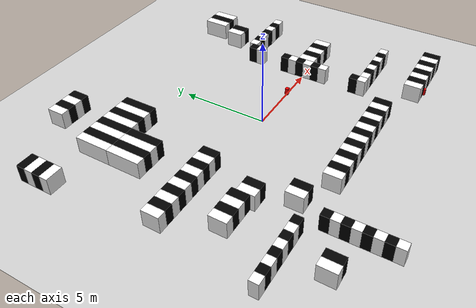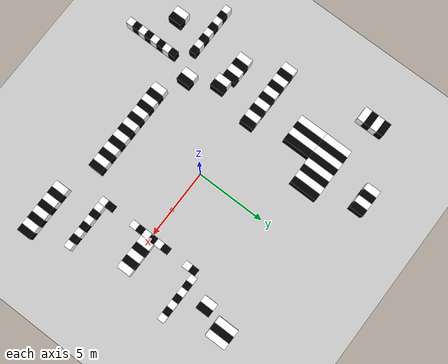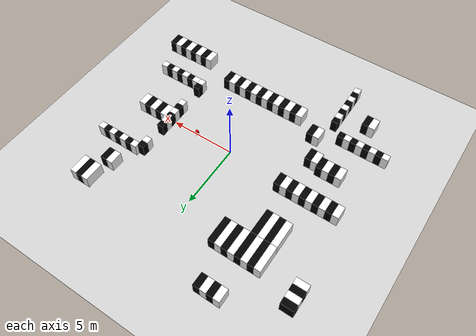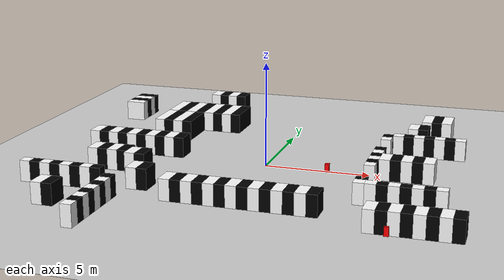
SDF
<sdf version="1.9">
 <world name="default">
  <model name="ground_plane">
   <static>true</static>
   <link name="link">
    <collision name="collision">
     <geometry><plane><normal>0 0 1</normal><size>100 100</size></plane></geometry>
    </collision>
    <visual name="visual">
     <geometry><plane><normal>0 0 1</normal><size>100 100</size></plane></geometry>
     <material>
      <ambient>0.8 0.8 0.8 1</ambient>
      <diffuse>0.8 0.8 0.8 1</diffuse>
      <specular>0.8 0.8 0.8 1</specular>
     </material>
    </visual>
   </link>
  </model>
  <model name="obs1">
   <static>true</static>
   <link name="link">
    <collision name="collision1">
     <geometry>
      <polyline>
       <point>-10 -5</point>
       <point>-6 -5</point>
       <point>-6 -5.5</point>
       <point>-10 -5.5</point>
       <height>1</height>
      </polyline>
     </geometry>
    </collision>
    <visual name="s1">
     <pose>-9.75 -5.25 0.5 0 0 0</pose>
     <geometry><box><size>0.5 0.5 1</size></box></geometry>
     <material><ambient>1 1 1 1</ambient><diffuse>1 1 1 1</diffuse></material>
    </visual>
    <visual name="s2">
     <pose>-9.25 -5.25 0.5 0 0 0</pose>
     <geometry><box><size>0.5 0.5 1</size></box></geometry>
     <material><ambient>0 0 0 1</ambient><diffuse>0 0 0 1</diffuse></material>
    </visual>
    <visual name="s3">
     <pose>-8.75 -5.25 0.5 0 0 0</pose>
     <geometry><box><size>0.5 0.5 1</size></box></geometry>
     <material><ambient>1 1 1 1</ambient><diffuse>1 1 1 1</diffuse></material>
    </visual>
    <visual name="s4">
     <pose>-8.25 -5.25 0.5 0 0 0</pose>
     <geometry><box><size>0.5 0.5 1</size></box></geometry>
     <material><ambient>0 0 0 1</ambient><diffuse>0 0 0 1</diffuse></material>
    </visual>
    <visual name="s5">
     <pose>-7.75 -5.25 0.5 0 0 0</pose>
     <geometry><box><size>0.5 0.5 1</size></box></geometry>
     <material><ambient>1 1 1 1</ambient><diffuse>1 1 1 1</diffuse></material>
    </visual>
    <visual name="s6">
     <pose>-7.25 -5.25 0.5 0 0 0</pose>
     <geometry><box><size>0.5 0.5 1</size></box></geometry>
     <material><ambient>0 0 0 1</ambient><diffuse>0 0 0 1</diffuse></material>
    </visual>
    <visual name="s7">
     <pose>-6.75 -5.25 0.5 0 0 0</pose>
     <geometry><box><size>0.5 0.5 1</size></box></geometry>
     <material><ambient>1 1 1 1</ambient><diffuse>1 1 1 1</diffuse></material>
    </visual>
    <visual name="s8">
     <pose>-6.25 -5.25 0.5 0 0 0</pose>
     <geometry><box><size>0.5 0.5 1</size></box></geometry>
     <material><ambient>0 0 0 1</ambient><diffuse>0 0 0 1</diffuse></material>
    </visual>
   </link>
  </model>
  <model name="obs2">
   <static>true</static>
   <link name="link">
    <collision name="collision1">
     <geometry>
      <polyline>
       <point>-5.5 -6</point>
       <point>-5 -6</point>
       <point>-5 -10</point>
       <point>-5.5 -10</point>
       <height>1</height>
      </polyline>
     </geometry>
    </collision>
    <visual name="s1">
     <pose>-5.25 -9.75 0.5 0 0 0</pose>
     <geometry><box><size>0.5 0.5 1</size></box></geometry>
     <material><ambient>1 1 1 1</ambient><diffuse>1 1 1 1</diffuse></material>
    </visual>
    <visual name="s2">
     <pose>-5.25 -9.25 0.5 0 0 0</pose>
     <geometry><box><size>0.5 0.5 1</size></box></geometry>
     <material><ambient>0 0 0 1</ambient><diffuse>0 0 0 1</diffuse></material>
    </visual>
    <visual name="s3">
     <pose>-5.25 -8.75 0.5 0 0 0</pose>
     <geometry><box><size>0.5 0.5 1</size></box></geometry>
     <material><ambient>1 1 1 1</ambient><diffuse>1 1 1 1</diffuse></material>
    </visual>
    <visual name="s4">
     <pose>-5.25 -8.25 0.5 0 0 0</pose>
     <geometry><box><size>0.5 0.5 1</size></box></geometry>
     <material><ambient>0 0 0 1</ambient><diffuse>0 0 0 1</diffuse></material>
    </visual>
    <visual name="s5">
     <pose>-5.25 -7.75 0.5 0 0 0</pose>
     <geometry><box><size>0.5 0.5 1</size></box></geometry>
     <material><ambient>1 1 1 1</ambient><diffuse>1 1 1 1</diffuse></material>
    </visual>
    <visual name="s6">
     <pose>-5.25 -7.25 0.5 0 0 0</pose>
     <geometry><box><size>0.5 0.5 1</size></box></geometry>
     <material><ambient>0 0 0 1</ambient><diffuse>0 0 0 1</diffuse></material>
    </visual>
    <visual name="s7">
     <pose>-5.25 -6.75 0.5 0 0 0</pose>
     <geometry><box><size>0.5 0.5 1</size></box></geometry>
     <material><ambient>1 1 1 1</ambient><diffuse>1 1 1 1</diffuse></material>
    </visual>
    <visual name="s8">
     <pose>-5.25 -6.25 0.5 0 0 0</pose>
     <geometry><box><size>0.5 0.5 1</size></box></geometry>
     <material><ambient>0 0 0 1</ambient><diffuse>0 0 0 1</diffuse></material>
    </visual>
   </link>
  </model>
  <model name="obs3">
   <static>true</static>
   <link name="link">
    <collision name="collision1">
     <geometry>
      <polyline>
       <point>-3 -5</point>
       <point>4 -5</point>
       <point>4 -6</point>
       <point>-3 -6</point>
       <height>1</height>
      </polyline>
     </geometry>
    </collision>
    <visual name="s1">
     <pose>-2.75 -5.5 0.5 0 0 0</pose>
     <geometry><box><size>0.5 1 1</size></box></geometry>
     <material><ambient>1 1 1 1</ambient><diffuse>1 1 1 1</diffuse></material>
    </visual>
    <visual name="s2">
     <pose>-2.25 -5.5 0.5 0 0 0</pose>
     <geometry><box><size>0.5 1 1</size></box></geometry>
     <material><ambient>0 0 0 1</ambient><diffuse>0 0 0 1</diffuse></material>
    </visual>
    <visual name="s3">
     <pose>-1.75 -5.5 0.5 0 0 0</pose>
     <geometry><box><size>0.5 1 1</size></box></geometry>
     <material><ambient>1 1 1 1</ambient><diffuse>1 1 1 1</diffuse></material>
    </visual>
    <visual name="s4">
     <pose>-1.25 -5.5 0.5 0 0 0</pose>
     <geometry><box><size>0.5 1 1</size></box></geometry>
     <material><ambient>0 0 0 1</ambient><diffuse>0 0 0 1</diffuse></material>
    </visual>
    <visual name="s5">
     <pose>-0.75 -5.5 0.5 0 0 0</pose>
     <geometry><box><size>0.5 1 1</size></box></geometry>
     <material><ambient>1 1 1 1</ambient><diffuse>1 1 1 1</diffuse></material>
    </visual>
    <visual name="s6">
     <pose>-0.25 -5.5 0.5 0 0 0</pose>
     <geometry><box><size>0.5 1 1</size></box></geometry>
     <material><ambient>0 0 0 1</ambient><diffuse>0 0 0 1</diffuse></material>
    </visual>
    <visual name="s7">
     <pose>0.25 -5.5 0.5 0 0 0</pose>
     <geometry><box><size>0.5 1 1</size></box></geometry>
     <material><ambient>1 1 1 1</ambient><diffuse>1 1 1 1</diffuse></material>
    </visual>
    <visual name="s8">
     <pose>0.75 -5.5 0.5 0 0 0</pose>
     <geometry><box><size>0.5 1 1</size></box></geometry>
     <material><ambient>0 0 0 1</ambient><diffuse>0 0 0 1</diffuse></material>
    </visual>
    <visual name="s9">
     <pose>1.25 -5.5 0.5 0 0 0</pose>
     <geometry><box><size>0.5 1 1</size></box></geometry>
     <material><ambient>1 1 1 1</ambient><diffuse>1 1 1 1</diffuse></material>
    </visual>
    <visual name="s10">
     <pose>1.75 -5.5 0.5 0 0 0</pose>
     <geometry><box><size>0.5 1 1</size></box></geometry>
     <material><ambient>0 0 0 1</ambient><diffuse>0 0 0 1</diffuse></material>
    </visual>
    <visual name="s11">
     <pose>2.25 -5.5 0.5 0 0 0</pose>
     <geometry><box><size>0.5 1 1</size></box></geometry>
     <material><ambient>1 1 1 1</ambient><diffuse>1 1 1 1</diffuse></material>
    </visual>
    <visual name="s12">
     <pose>2.75 -5.5 0.5 0 0 0</pose>
     <geometry><box><size>0.5 1 1</size></box></geometry>
     <material><ambient>0 0 0 1</ambient><diffuse>0 0 0 1</diffuse></material>
    </visual>
    <visual name="s13">
     <pose>3.25 -5.5 0.5 0 0 0</pose>
     <geometry><box><size>0.5 1 1</size></box></geometry>
     <material><ambient>1 1 1 1</ambient><diffuse>1 1 1 1</diffuse></material>
    </visual>
    <visual name="s14">
     <pose>3.75 -5.5 0.5 0 0 0</pose>
     <geometry><box><size>0.5 1 1</size></box></geometry>
     <material><ambient>0 0 0 1</ambient><diffuse>0 0 0 1</diffuse></material>
    </visual>
   </link>
  </model>
  <model name="obs4">
   <static>true</static>
   <link name="link">
    <collision name="collision1">
     <geometry>
      <polyline>
       <point>6 -6</point>
       <point>10 -6</point>
       <point>10 -7</point>
       <point>6 -7</point>
       <height>1</height>
      </polyline>
     </geometry>
    </collision>
    <visual name="s1">
     <pose>6.25 -6.5 0.5 0 0 0</pose>
     <geometry><box><size>0.5 1 1</size></box></geometry>
     <material><ambient>1 1 1 1</ambient><diffuse>1 1 1 1</diffuse></material>
    </visual>
    <visual name="s2">
     <pose>6.75 -6.5 0.5 0 0 0</pose>
     <geometry><box><size>0.5 1 1</size></box></geometry>
     <material><ambient>0 0 0 1</ambient><diffuse>0 0 0 1</diffuse></material>
    </visual>
    <visual name="s3">
     <pose>7.25 -6.5 0.5 0 0 0</pose>
     <geometry><box><size>0.5 1 1</size></box></geometry>
     <material><ambient>1 1 1 1</ambient><diffuse>1 1 1 1</diffuse></material>
    </visual>
    <visual name="s4">
     <pose>7.75 -6.5 0.5 0 0 0</pose>
     <geometry><box><size>0.5 1 1</size></box></geometry>
     <material><ambient>0 0 0 1</ambient><diffuse>0 0 0 1</diffuse></material>
    </visual>
    <visual name="s5">
     <pose>8.25 -6.5 0.5 0 0 0</pose>
     <geometry><box><size>0.5 1 1</size></box></geometry>
     <material><ambient>1 1 1 1</ambient><diffuse>1 1 1 1</diffuse></material>
    </visual>
    <visual name="s6">
     <pose>8.75 -6.5 0.5 0 0 0</pose>
     <geometry><box><size>0.5 1 1</size></box></geometry>
     <material><ambient>0 0 0 1</ambient><diffuse>0 0 0 1</diffuse></material>
    </visual>
    <visual name="s7">
     <pose>9.25 -6.5 0.5 0 0 0</pose>
     <geometry><box><size>0.5 1 1</size></box></geometry>
     <material><ambient>1 1 1 1</ambient><diffuse>1 1 1 1</diffuse></material>
    </visual>
    <visual name="s8">
     <pose>9.75 -6.5 0.5 0 0 0</pose>
     <geometry><box><size>0.5 1 1</size></box></geometry>
     <material><ambient>0 0 0 1</ambient><diffuse>0 0 0 1</diffuse></material>
    </visual>
   </link>
  </model>
  <model name="obs5">
   <static>true</static>
   <link name="link">
    <collision name="collision1">
     <geometry>
      <polyline>
       <point>-6 -2</point>
       <point>-5 -2</point>
       <point>-5 -3</point>
       <point>-6 -3</point>
       <height>1</height>
      </polyline>
     </geometry>
    </collision>
    <visual name="s1">
     <pose>-5.75 -2.5 0.5 0 0 0</pose>
     <geometry><box><size>0.5 1 1</size></box></geometry>
     <material><ambient>1 1 1 1</ambient><diffuse>1 1 1 1</diffuse></material>
    </visual>
    <visual name="s2">
     <pose>-5.25 -2.5 0.5 0 0 0</pose>
     <geometry><box><size>0.5 1 1</size></box></geometry>
     <material><ambient>0 0 0 1</ambient><diffuse>0 0 0 1</diffuse></material>
    </visual>
   </link>
  </model>
  <model name="obs6">
   <static>true</static>
   <link name="link">
    <collision name="collision1">
     <geometry>
      <polyline>
       <point>-9.25 1</point>
       <point>-4 1</point>
       <point>-4 0</point>
       <point>-9.25 0</point>
       <height>1</height>
      </polyline>
     </geometry>
    </collision>
    <visual name="s1">
     <pose>-9.0 0.5 0.5 0 0 0</pose>
     <geometry><box><size>0.5 1 1</size></box></geometry>
     <material><ambient>1 1 1 1</ambient><diffuse>1 1 1 1</diffuse></material>
    </visual>
    <visual name="s2">
     <pose>-8.5 0.5 0.5 0 0 0</pose>
     <geometry><box><size>0.5 1 1</size></box></geometry>
     <material><ambient>0 0 0 1</ambient><diffuse>0 0 0 1</diffuse></material>
    </visual>
    <visual name="s3">
     <pose>-8.0 0.5 0.5 0 0 0</pose>
     <geometry><box><size>0.5 1 1</size></box></geometry>
     <material><ambient>1 1 1 1</ambient><diffuse>1 1 1 1</diffuse></material>
    </visual>
    <visual name="s4">
     <pose>-7.5 0.5 0.5 0 0 0</pose>
     <geometry><box><size>0.5 1 1</size></box></geometry>
     <material><ambient>0 0 0 1</ambient><diffuse>0 0 0 1</diffuse></material>
    </visual>
    <visual name="s5">
     <pose>-7.0 0.5 0.5 0 0 0</pose>
     <geometry><box><size>0.5 1 1</size></box></geometry>
     <material><ambient>1 1 1 1</ambient><diffuse>1 1 1 1</diffuse></material>
    </visual>
    <visual name="s6">
     <pose>-6.5 0.5 0.5 0 0 0</pose>
     <geometry><box><size>0.5 1 1</size></box></geometry>
     <material><ambient>0 0 0 1</ambient><diffuse>0 0 0 1</diffuse></material>
    </visual>
    <visual name="s7">
     <pose>-6.0 0.5 0.5 0 0 0</pose>
     <geometry><box><size>0.5 1 1</size></box></geometry>
     <material><ambient>1 1 1 1</ambient><diffuse>1 1 1 1</diffuse></material>
    </visual>
    <visual name="s8">
     <pose>-5.5 0.5 0.5 0 0 0</pose>
     <geometry><box><size>0.5 1 1</size></box></geometry>
     <material><ambient>0 0 0 1</ambient><diffuse>0 0 0 1</diffuse></material>
    </visual>
    <visual name="s9">
     <pose>-5.0 0.5 0.5 0 0 0</pose>
     <geometry><box><size>0.5 1 1</size></box></geometry>
     <material><ambient>1 1 1 1</ambient><diffuse>1 1 1 1</diffuse></material>
    </visual>
    <visual name="s10">
     <pose>-4.5 0.5 0.5 0 0 0</pose>
     <geometry><box><size>0.5 1 1</size></box></geometry>
     <material><ambient>0 0 0 1</ambient><diffuse>0 0 0 1</diffuse></material>
    </visual>
   </link>
  </model>
  <model name="obs7">
   <static>true</static>
   <link name="link">
    <collision name="collision1">
     <geometry>
      <polyline>
       <point>-7 5</point>
       <point>-5 5</point>
       <point>-5 3</point>
       <point>-7 3</point>
       <height>1</height>
      </polyline>
     </geometry>
    </collision>
    <visual name="s1">
     <pose>-6.75 4 0.5 0 0 0</pose>
     <geometry><box><size>0.5 2 1</size></box></geometry>
     <material><ambient>1 1 1 1</ambient><diffuse>1 1 1 1</diffuse></material>
    </visual>
    <visual name="s2">
     <pose>-6.25 4 0.5 0 0 0</pose>
     <geometry><box><size>0.5 2 1</size></box></geometry>
     <material><ambient>0 0 0 1</ambient><diffuse>0 0 0 1</diffuse></material>
    </visual>
    <visual name="s3">
     <pose>-5.75 4 0.5 0 0 0</pose>
     <geometry><box><size>0.5 2 1</size></box></geometry>
     <material><ambient>1 1 1 1</ambient><diffuse>1 1 1 1</diffuse></material>
    </visual>
    <visual name="s4">
     <pose>-5.25 4 0.5 0 0 0</pose>
     <geometry><box><size>0.5 2 1</size></box></geometry>
     <material><ambient>0 0 0 1</ambient><diffuse>0 0 0 1</diffuse></material>
    </visual>
   </link>
  </model>
  <model name="obs8">
   <static>true</static>
   <link name="link">
    <collision name="collision1">
     <geometry>
      <polyline>
       <point>-7 7</point>
       <point>-3 7</point>
       <point>-3 5</point>
       <point>-7 5</point>
       <height>1</height>
      </polyline>
     </geometry>
    </collision>
    <visual name="s1">
     <pose>-6.75 6 0.5 0 0 0</pose>
     <geometry><box><size>0.5 2 1</size></box></geometry>
     <material><ambient>1 1 1 1</ambient><diffuse>1 1 1 1</diffuse></material>
    </visual>
    <visual name="s2">
     <pose>-6.25 6 0.5 0 0 0</pose>
     <geometry><box><size>0.5 2 1</size></box></geometry>
     <material><ambient>0 0 0 1</ambient><diffuse>0 0 0 1</diffuse></material>
    </visual>
    <visual name="s3">
     <pose>-5.75 6 0.5 0 0 0</pose>
     <geometry><box><size>0.5 2 1</size></box></geometry>
     <material><ambient>1 1 1 1</ambient><diffuse>1 1 1 1</diffuse></material>
    </visual>
    <visual name="s4">
     <pose>-5.25 6 0.5 0 0 0</pose>
     <geometry><box><size>0.5 2 1</size></box></geometry>
     <material><ambient>0 0 0 1</ambient><diffuse>0 0 0 1</diffuse></material>
    </visual>
    <visual name="s5">
     <pose>-4.75 6 0.5 0 0 0</pose>
     <geometry><box><size>0.5 2 1</size></box></geometry>
     <material><ambient>1 1 1 1</ambient><diffuse>1 1 1 1</diffuse></material>
    </visual>
    <visual name="s6">
     <pose>-4.25 6 0.5 0 0 0</pose>
     <geometry><box><size>0.5 2 1</size></box></geometry>
     <material><ambient>0 0 0 1</ambient><diffuse>0 0 0 1</diffuse></material>
    </visual>
    <visual name="s7">
     <pose>-3.75 6 0.5 0 0 0</pose>
     <geometry><box><size>0.5 2 1</size></box></geometry>
     <material><ambient>1 1 1 1</ambient><diffuse>1 1 1 1</diffuse></material>
    </visual>
    <visual name="s8">
     <pose>-3.25 6 0.5 0 0 0</pose>
     <geometry><box><size>0.5 2 1</size></box></geometry>
     <material><ambient>0 0 0 1</ambient><diffuse>0 0 0 1</diffuse></material>
    </visual>
   </link>
  </model>
  <model name="obs12">
   <static>true</static>
   <link name="link">
    <collision name="collision1">
     <geometry>
      <polyline>
       <point>6.5 8</point>
       <point>8 8</point>
       <point>8 6.5</point>
       <point>6.5 6.5</point>
       <height>1</height>
      </polyline>
     </geometry>
    </collision>
    <visual name="s1">
     <pose>6.75 7.25 0.5 0 0 0</pose>
     <geometry><box><size>0.5 1.5 1</size></box></geometry>
     <material><ambient>1 1 1 1</ambient><diffuse>1 1 1 1</diffuse></material>
    </visual>
    <visual name="s2">
     <pose>7.25 7.25 0.5 0 0 0</pose>
     <geometry><box><size>0.5 1.5 1</size></box></geometry>
     <material><ambient>0 0 0 1</ambient><diffuse>0 0 0 1</diffuse></material>
    </visual>
    <visual name="s3">
     <pose>7.75 7.25 0.5 0 0 0</pose>
     <geometry><box><size>0.5 1.5 1</size></box></geometry>
     <material><ambient>1 1 1 1</ambient><diffuse>1 1 1 1</diffuse></material>
    </visual>
   </link>
  </model>
  <model name="obs13">
   <static>true</static>
   <link name="link">
    <collision name="collision1">
     <geometry>
      <polyline>
       <point>6 6</point>
       <point>7 6</point>
       <point>7 5</point>
       <point>6 5</point>
       <height>1</height>
      </polyline>
     </geometry>
    </collision>
    <visual name="s1">
     <pose>6.25 5.5 0.5 0 0 0</pose>
     <geometry><box><size>0.5 1 1</size></box></geometry>
     <material><ambient>1 1 1 1</ambient><diffuse>1 1 1 1</diffuse></material>
    </visual>
    <visual name="s2">
     <pose>6.75 5.5 0.5 0 0 0</pose>
     <geometry><box><size>0.5 1 1</size></box></geometry>
     <material><ambient>0 0 0 1</ambient><diffuse>0 0 0 1</diffuse></material>
    </visual>
   </link>
  </model>
  <model name="obs14">
   <static>true</static>
   <link name="link">
    <collision name="collision1">
     <geometry>
      <polyline>
       <point>5 4</point>
       <point>5.5 4</point>
       <point>5.5 2.75</point>
       <point>5 2.75</point>
       <height>1</height>
      </polyline>
     </geometry>
    </collision>
    <visual name="s1">
     <pose>5.25 3.0 0.5 0 0 0</pose>
     <geometry><box><size>0.5 0.5 1</size></box></geometry>
     <material><ambient>1 1 1 1</ambient><diffuse>1 1 1 1</diffuse></material>
    </visual>
    <visual name="s2">
     <pose>5.25 3.5 0.5 0 0 0</pose>
     <geometry><box><size>0.5 0.5 1</size></box></geometry>
     <material><ambient>0 0 0 1</ambient><diffuse>0 0 0 1</diffuse></material>
    </visual>
   </link>
  </model>
  <model name="obs15">
   <static>true</static>
   <link name="link">
    <collision name="collision1">
     <geometry>
      <polyline>
       <point>5.5 4</point>
       <point>9 4</point>
       <point>9 3.5</point>
       <point>5.5 3.5</point>
       <height>1</height>
      </polyline>
     </geometry>
    </collision>
    <visual name="s1">
     <pose>5.75 3.75 0.5 0 0 0</pose>
     <geometry><box><size>0.5 0.5 1</size></box></geometry>
     <material><ambient>1 1 1 1</ambient><diffuse>1 1 1 1</diffuse></material>
    </visual>
    <visual name="s2">
     <pose>6.25 3.75 0.5 0 0 0</pose>
     <geometry><box><size>0.5 0.5 1</size></box></geometry>
     <material><ambient>0 0 0 1</ambient><diffuse>0 0 0 1</diffuse></material>
    </visual>
    <visual name="s3">
     <pose>6.75 3.75 0.5 0 0 0</pose>
     <geometry><box><size>0.5 0.5 1</size></box></geometry>
     <material><ambient>1 1 1 1</ambient><diffuse>1 1 1 1</diffuse></material>
    </visual>
    <visual name="s4">
     <pose>7.25 3.75 0.5 0 0 0</pose>
     <geometry><box><size>0.5 0.5 1</size></box></geometry>
     <material><ambient>0 0 0 1</ambient><diffuse>0 0 0 1</diffuse></material>
    </visual>
    <visual name="s5">
     <pose>7.75 3.75 0.5 0 0 0</pose>
     <geometry><box><size>0.5 0.5 1</size></box></geometry>
     <material><ambient>1 1 1 1</ambient><diffuse>1 1 1 1</diffuse></material>
    </visual>
    <visual name="s6">
     <pose>8.25 3.75 0.5 0 0 0</pose>
     <geometry><box><size>0.5 0.5 1</size></box></geometry>
     <material><ambient>0 0 0 1</ambient><diffuse>0 0 0 1</diffuse></material>
    </visual>
    <visual name="s7">
     <pose>8.75 3.75 0.5 0 0 0</pose>
     <geometry><box><size>0.5 0.5 1</size></box></geometry>
     <material><ambient>1 1 1 1</ambient><diffuse>1 1 1 1</diffuse></material>
    </visual>
   </link>
  </model>
  <model name="obs16">
   <static>true</static>
   <link name="link">
    <collision name="collision1">
     <geometry>
      <polyline>
       <point>5 1.5</point>
       <point>5.5 1.5</point>
       <point>5.5 -1.5</point>
       <point>5 -1.5</point>
       <height>1</height>
      </polyline>
     </geometry>
    </collision>
    <visual name="s1">
     <pose>5.25 -1.25 0.5 0 0 0</pose>
     <geometry><box><size>0.5 0.5 1</size></box></geometry>
     <material><ambient>1 1 1 1</ambient><diffuse>1 1 1 1</diffuse></material>
    </visual>
    <visual name="s2">
     <pose>5.25 -0.75 0.5 0 0 0</pose>
     <geometry><box><size>0.5 0.5 1</size></box></geometry>
     <material><ambient>0 0 0 1</ambient><diffuse>0 0 0 1</diffuse></material>
    </visual>
    <visual name="s3">
     <pose>5.25 -0.25 0.5 0 0 0</pose>
     <geometry><box><size>0.5 0.5 1</size></box></geometry>
     <material><ambient>1 1 1 1</ambient><diffuse>1 1 1 1</diffuse></material>
    </visual>
    <visual name="s4">
     <pose>5.25 0.25 0.5 0 0 0</pose>
     <geometry><box><size>0.5 0.5 1</size></box></geometry>
     <material><ambient>0 0 0 1</ambient><diffuse>0 0 0 1</diffuse></material>
    </visual>
    <visual name="s5">
     <pose>5.25 0.75 0.5 0 0 0</pose>
     <geometry><box><size>0.5 0.5 1</size></box></geometry>
     <material><ambient>1 1 1 1</ambient><diffuse>1 1 1 1</diffuse></material>
    </visual>
    <visual name="s6">
     <pose>5.25 1.25 0.5 0 0 0</pose>
     <geometry><box><size>0.5 0.5 1</size></box></geometry>
     <material><ambient>0 0 0 1</ambient><diffuse>0 0 0 1</diffuse></material>
    </visual>
   </link>
  </model>
  <model name="obs17">
   <static>true</static>
   <link name="link">
    <collision name="collision1">
     <geometry>
      <polyline>
       <point>5.5 0.5</point>
       <point>8 0.5</point>
       <point>8 -0.5</point>
       <point>5.5 -0.5</point>
       <height>1</height>
      </polyline>
     </geometry>
    </collision>
    <visual name="s1">
     <pose>5.75 0 0.5 0 0 0</pose>
     <geometry><box><size>0.5 1 1</size></box></geometry>
     <material><ambient>1 1 1 1</ambient><diffuse>1 1 1 1</diffuse></material>
    </visual>
    <visual name="s2">
     <pose>6.25 0 0.5 0 0 0</pose>
     <geometry><box><size>0.5 1 1</size></box></geometry>
     <material><ambient>0 0 0 1</ambient><diffuse>0 0 0 1</diffuse></material>
    </visual>
    <visual name="s3">
     <pose>6.75 0 0.5 0 0 0</pose>
     <geometry><box><size>0.5 1 1</size></box></geometry>
     <material><ambient>1 1 1 1</ambient><diffuse>1 1 1 1</diffuse></material>
    </visual>
    <visual name="s4">
     <pose>7.25 0 0.5 0 0 0</pose>
     <geometry><box><size>0.5 1 1</size></box></geometry>
     <material><ambient>0 0 0 1</ambient><diffuse>0 0 0 1</diffuse></material>
    </visual>
    <visual name="s5">
     <pose>7.75 0 0.5 0 0 0</pose>
     <geometry><box><size>0.5 1 1</size></box></geometry>
     <material><ambient>1 1 1 1</ambient><diffuse>1 1 1 1</diffuse></material>
    </visual>
   </link>
  </model>
  <model name="obs18">
   <static>true</static>
   <link name="link">
    <collision name="collision1">
     <geometry>
      <polyline>
       <point>5 -2.75</point>
       <point>5.5 -2.75</point>
       <point>5.5 -4</point>
       <point>5 -4</point>
       <height>1</height>
      </polyline>
     </geometry>
    </collision>
    <visual name="s1">
     <pose>5.25 -3.75 0.5 0 0 0</pose>
     <geometry><box><size>0.5 0.5 1</size></box></geometry>
     <material><ambient>1 1 1 1</ambient><diffuse>1 1 1 1</diffuse></material>
    </visual>
    <visual name="s2">
     <pose>5.25 -3.25 0.5 0 0 0</pose>
     <geometry><box><size>0.5 0.5 1</size></box></geometry>
     <material><ambient>0 0 0 1</ambient><diffuse>0 0 0 1</diffuse></material>
    </visual>
   </link>
  </model>
  <model name="obs19">
   <static>true</static>
   <link name="link">
    <collision name="collision1">
     <geometry>
      <polyline>
       <point>5.5 -3.5</point>
       <point>9 -3.5</point>
       <point>9 -4</point>
       <point>5.5 -4</point>
       <height>1</height>
      </polyline>
     </geometry>
    </collision>
    <visual name="s1">
     <pose>5.75 -3.75 0.5 0 0 0</pose>
     <geometry><box><size>0.5 0.5 1</size></box></geometry>
     <material><ambient>1 1 1 1</ambient><diffuse>1 1 1 1</diffuse></material>
    </visual>
    <visual name="s2">
     <pose>6.25 -3.75 0.5 0 0 0</pose>
     <geometry><box><size>0.5 0.5 1</size></box></geometry>
     <material><ambient>0 0 0 1</ambient><diffuse>0 0 0 1</diffuse></material>
    </visual>
    <visual name="s3">
     <pose>6.75 -3.75 0.5 0 0 0</pose>
     <geometry><box><size>0.5 0.5 1</size></box></geometry>
     <material><ambient>1 1 1 1</ambient><diffuse>1 1 1 1</diffuse></material>
    </visual>
    <visual name="s4">
     <pose>7.25 -3.75 0.5 0 0 0</pose>
     <geometry><box><size>0.5 0.5 1</size></box></geometry>
     <material><ambient>0 0 0 1</ambient><diffuse>0 0 0 1</diffuse></material>
    </visual>
    <visual name="s5">
     <pose>7.75 -3.75 0.5 0 0 0</pose>
     <geometry><box><size>0.5 0.5 1</size></box></geometry>
     <material><ambient>1 1 1 1</ambient><diffuse>1 1 1 1</diffuse></material>
    </visual>
    <visual name="s6">
     <pose>8.25 -3.75 0.5 0 0 0</pose>
     <geometry><box><size>0.5 0.5 1</size></box></geometry>
     <material><ambient>0 0 0 1</ambient><diffuse>0 0 0 1</diffuse></material>
    </visual>
    <visual name="s7">
     <pose>8.75 -3.75 0.5 0 0 0</pose>
     <geometry><box><size>0.5 0.5 1</size></box></geometry>
     <material><ambient>1 1 1 1</ambient><diffuse>1 1 1 1</diffuse></material>
    </visual>
   </link>
  </model>
  <model name="obs24">
   <static>true</static>
   <link name="link">
    <collision name="collision1">
     <geometry>
      <polyline>
       <point>-8 -7</point>
       <point>-7 -7</point>
       <point>-7 -8</point>
       <point>-8 -8</point>
       <height>1</height>
      </polyline>
     </geometry>
    </collision>
    <visual name="s1">
     <pose>-7.75 -7.5 0.5 0 0 0</pose>
     <geometry><box><size>0.5 1 1</size></box></geometry>
     <material><ambient>1 1 1 1</ambient><diffuse>1 1 1 1</diffuse></material>
    </visual>
    <visual name="s2">
     <pose>-7.25 -7.5 0.5 0 0 0</pose>
     <geometry><box><size>0.5 1 1</size></box></geometry>
     <material><ambient>0 0 0 1</ambient><diffuse>0 0 0 1</diffuse></material>
    </visual>
   </link>
  </model>
  <model name="obs25">
   <static>true</static>
   <link name="link">
    <collision name="collision1">
     <geometry>
      <polyline>
       <point>-8 -1.75</point>
       <point>-6 -1.75</point>
       <point>-6 -2.75</point>
       <point>-8 -2.75</point>
       <height>1</height>
      </polyline>
     </geometry>
    </collision>
    <visual name="s1">
     <pose>-7.75 -2.25 0.5 0 0 0</pose>
     <geometry><box><size>0.5 1 1</size></box></geometry>
     <material><ambient>1 1 1 1</ambient><diffuse>1 1 1 1</diffuse></material>
    </visual>
    <visual name="s2">
     <pose>-7.25 -2.25 0.5 0 0 0</pose>
     <geometry><box><size>0.5 1 1</size></box></geometry>
     <material><ambient>0 0 0 1</ambient><diffuse>0 0 0 1</diffuse></material>
    </visual>
    <visual name="s3">
     <pose>-6.75 -2.25 0.5 0 0 0</pose>
     <geometry><box><size>0.5 1 1</size></box></geometry>
     <material><ambient>1 1 1 1</ambient><diffuse>1 1 1 1</diffuse></material>
    </visual>
    <visual name="s4">
     <pose>-6.25 -2.25 0.5 0 0 0</pose>
     <geometry><box><size>0.5 1 1</size></box></geometry>
     <material><ambient>0 0 0 1</ambient><diffuse>0 0 0 1</diffuse></material>
    </visual>
   </link>
  </model>
  <model name="obs27">
   <static>true</static>
   <link name="link">
    <collision name="collision1">
     <geometry>
      <polyline>
       <point>-5 -4</point>
       <point>-4 -4</point>
       <point>-4 -5</point>
       <point>-5 -5</point>
       <height>1</height>
      </polyline>
     </geometry>
    </collision>
    <visual name="s1">
     <pose>-4.75 -4.5 0.5 0 0 0</pose>
     <geometry><box><size>0.5 1 1</size></box></geometry>
     <material><ambient>1 1 1 1</ambient><diffuse>1 1 1 1</diffuse></material>
    </visual>
    <visual name="s2">
     <pose>-4.25 -4.5 0.5 0 0 0</pose>
     <geometry><box><size>0.5 1 1</size></box></geometry>
     <material><ambient>0 0 0 1</ambient><diffuse>0 0 0 1</diffuse></material>
    </visual>
   </link>
  </model>
  <model name="obs29">
   <static>true</static>
   <link name="link">
    <collision name="collision1">
     <geometry>
      <polyline>
       <point>-10 8</point>
       <point>-9 8</point>
       <point>-9 6</point>
       <point>-10 6</point>
       <height>1</height>
      </polyline>
     </geometry>
    </collision>
    <visual name="s1">
     <pose>-9.5 6.25 0.5 0 0 0</pose>
     <geometry><box><size>1 0.5 1</size></box></geometry>
     <material><ambient>1 1 1 1</ambient><diffuse>1 1 1 1</diffuse></material>
    </visual>
    <visual name="s2">
     <pose>-9.5 6.75 0.5 0 0 0</pose>
     <geometry><box><size>1 0.5 1</size></box></geometry>
     <material><ambient>0 0 0 1</ambient><diffuse>0 0 0 1</diffuse></material>
    </visual>
    <visual name="s3">
     <pose>-9.5 7.25 0.5 0 0 0</pose>
     <geometry><box><size>1 0.5 1</size></box></geometry>
     <material><ambient>1 1 1 1</ambient><diffuse>1 1 1 1</diffuse></material>
    </visual>
    <visual name="s4">
     <pose>-9.5 7.75 0.5 0 0 0</pose>
     <geometry><box><size>1 0.5 1</size></box></geometry>
     <material><ambient>0 0 0 1</ambient><diffuse>0 0 0 1</diffuse></material>
    </visual>
   </link>
  </model>
  <model name="obs30">
   <static>true</static>
   <link name="link">
    <collision name="collision1">
     <geometry>
      <polyline>
       <point>-6 10</point>
       <point>-4 10</point>
       <point>-4 9</point>
       <point>-6 9</point>
       <height>1</height>
      </polyline>
     </geometry>
    </collision>
    <visual name="s1">
     <pose>-5.75 9.5 0.5 0 0 0</pose>
     <geometry><box><size>0.5 1 1</size></box></geometry>
     <material><ambient>1 1 1 1</ambient><diffuse>1 1 1 1</diffuse></material>
    </visual>
    <visual name="s2">
     <pose>-5.25 9.5 0.5 0 0 0</pose>
     <geometry><box><size>0.5 1 1</size></box></geometry>
     <material><ambient>0 0 0 1</ambient><diffuse>0 0 0 1</diffuse></material>
    </visual>
    <visual name="s3">
     <pose>-4.75 9.5 0.5 0 0 0</pose>
     <geometry><box><size>0.5 1 1</size></box></geometry>
     <material><ambient>1 1 1 1</ambient><diffuse>1 1 1 1</diffuse></material>
    </visual>
    <visual name="s4">
     <pose>-4.25 9.5 0.5 0 0 0</pose>
     <geometry><box><size>0.5 1 1</size></box></geometry>
     <material><ambient>0 0 0 1</ambient><diffuse>0 0 0 1</diffuse></material>
    </visual>
   </link>
  </model>
  <model name="eval_dyn2">
   <static>true</static>
   <pose>7 7 0.2 0 0 0</pose>
   <link name="link">
    <collision name="collision"><geometry><box><size>0.2 0.2 0.4</size></box></geometry></collision>
    <visual name="visual">
     <geometry><box><size>0.2 0.2 0.4</size></box></geometry>
     <material><ambient>1 0 0 1</ambient><diffuse>1 0 0 1</diffuse></material>
    </visual>
   </link>
  </model>
  <model name="eval_dyn4">
   <static>true</static>
   <pose>3 0 0.2 0 0 0</pose>
   <link name="link">
    <collision name="collision"><geometry><box><size>0.2 0.2 0.4</size></box></geometry></collision>
    <visual name="visual">
     <geometry><box><size>0.2 0.2 0.4</size></box></geometry>
     <material><ambient>1 0 0 1</ambient><diffuse>1 0 0 1</diffuse></material>
    </visual>
   </link>
  </model>
  <model name="eval_dyn6">
   <static>true</static>
   <pose>7 -7 0.2 0 0 0</pose>
   <link name="link">
    <collision name="collision"><geometry><box><size>0.2 0.2 0.4</size></box></geometry></collision>
    <visual name="visual">
     <geometry><box><size>0.2 0.2 0.4</size></box></geometry>
     <material><ambient>1 0 0 1</ambient><diffuse>1 0 0 1</diffuse></material>
    </visual>
   </link>
  </model>
 </world>
</sdf>
